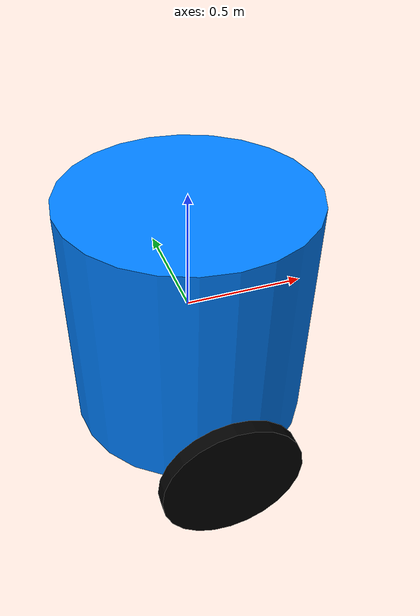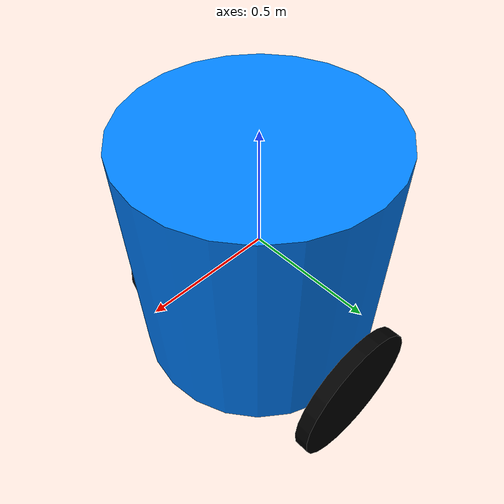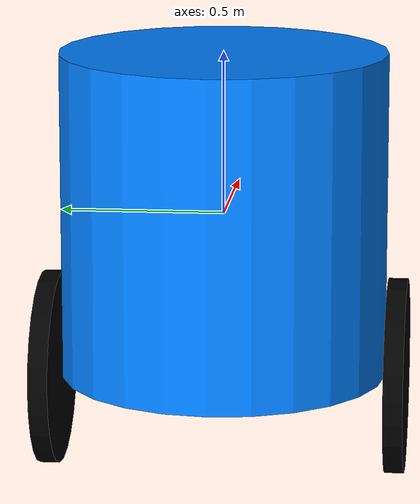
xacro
<?xml version="1.0"?>
<robot name="custom_robot" xmlns:xacro="http://ros.org/wiki/xacro">

    <material name="blue">
        <color rgba="0.0 0.5 1.0 1.0" />
    </material>
    <material name="black">
        <color rgba="0.0 0.0 0.0 1.0" />
    </material>

    <link name="base_link">
        <visual>
            <geometry>
                <cylinder radius="0.5" length="1" />
            </geometry>
            <origin xyz="0 0 0" />
            <material name="blue" />
        </visual>
        <collision>
            <geometry>
                <cylinder radius="0.5" length="1" />
            </geometry>
        </collision>
        <inertial>
            <mass value="5.0" />
            <inertia ixx="0.6" ixy="0" ixz="0" iyy="0.6" iyz="0" izz="0.3" />
        </inertial>
    </link>

    <link name="left_wheel">
        <visual>
            <geometry>
                <cylinder radius="0.3" length="0.06" />
            </geometry>
            <origin xyz="0 0 0" rpy="1.5708 0 0" />
            <material name="black" />
        </visual>
        <collision>
            <geometry>
                <cylinder radius="0.3" length="0.06" />
            </geometry>
            <origin xyz="0 0 0" rpy="1.5708 0 0" />
        </collision>
        <inertial>
            <mass value="1.0" />
            <inertia ixx="0.005" ixy="0" ixz="0" iyy="0.005" iyz="0" izz="0.001" />
        </inertial>
    </link>

    <joint name="left_wheel_joint" type="continuous">
        <parent link="base_link" />
        <child link="left_wheel" />
        <origin xyz="0 0.535 -0.5" />
        <axis xyz="0 1 0" />
    </joint>

    <link name="right_wheel">
        <visual>
            <geometry>
                <cylinder radius="0.3" length="0.06" />
            </geometry>
            <origin xyz="0 0 0" rpy="1.5708 0 0" />
            <material name="black" />
        </visual>
        <collision>
            <geometry>
                <cylinder radius="0.3" length="0.06" />
            </geometry>
            <origin xyz="0 0 0" rpy="1.5708 0 0" />
        </collision>
        <inertial>
            <mass value="1.0" />
            <inertia ixx="0.005" ixy="0" ixz="0" iyy="0.005" iyz="0" izz="0.001" />
        </inertial>
    </link>

    <joint name="right_wheel_joint" type="continuous">
        <parent link="base_link" />
        <child link="right_wheel" />
        <origin xyz="0 -0.535 -0.5" />
        <axis xyz="0 1 0" />
    </joint>

    <gazebo>
        <plugin name="diff_drive" filename="libgazebo_ros_diff_drive.so">
            <ros>
                <namespace>/</namespace>
                <remapping>cmd_vel:=cmd_vel</remapping>
                <remapping>odom:=odom</remapping>
            </ros>
            <update_rate>30</update_rate>
            <left_joint>left_wheel_joint</left_joint>
            <right_joint>right_wheel_joint</right_joint>
            <wheel_separation>1.07</wheel_separation>
            <wheel_diameter>0.6</wheel_diameter>
            <publish_odom>true</publish_odom>
            <publish_wheel_tf>true</publish_wheel_tf>
        </plugin>
    </gazebo>

    <gazebo reference="base_link">
        <material>Gazebo/Blue</material>
    </gazebo>
    <gazebo reference="left_wheel">
        <material>Gazebo/Black</material>
    </gazebo>
    <gazebo reference="right_wheel">
        <material>Gazebo/Black</material>
    </gazebo>

</robot>
